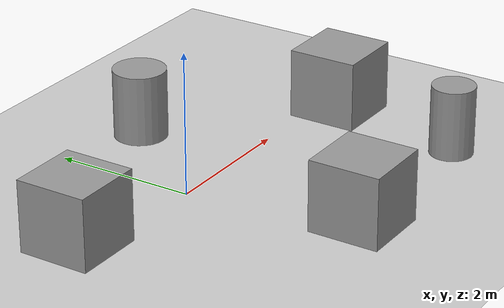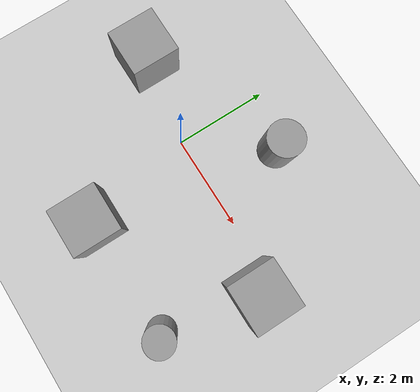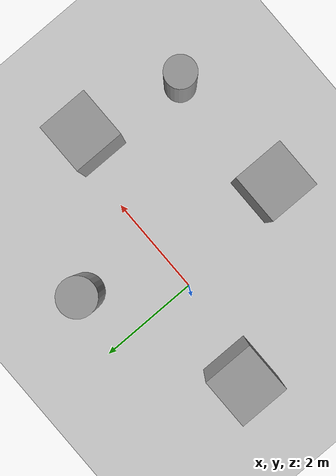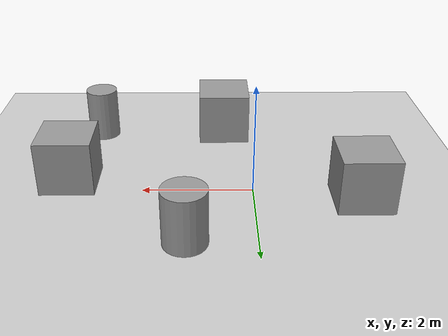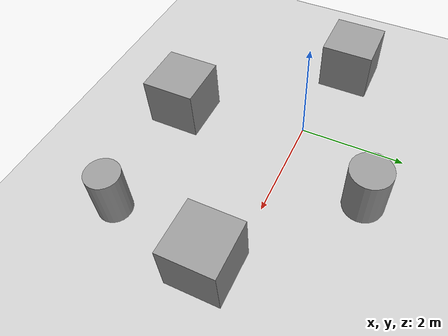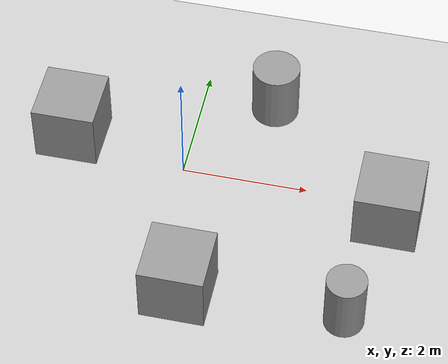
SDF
<sdf version="1.6">
 <world name="default">
  <light name="sun" type="directional">
   <pose>0 0 10 0 -0 0</pose>
   <diffuse>0.8 0.8 0.8 1</diffuse>
   <specular>0.2 0.2 0.2 1</specular>
   <attenuation>
    <range>1000</range>
    <constant>0.9</constant>
    <linear>0.01</linear>
    <quadratic>0.001</quadratic>
   </attenuation>
   <direction>-0.5 0.1 -0.9</direction>
  </light>
  <model name="ground_plane">
   <static>1</static>
   <link name="link">
    <collision name="collision">
     <geometry><plane><normal>0 0 1</normal><size>100 100</size></plane></geometry>
     <surface><friction><ode><mu>100</mu><mu2>50</mu2></ode></friction></surface>
    </collision>
    <visual name="visual">
     <cast_shadows>0</cast_shadows>
     <geometry><plane><normal>0 0 1</normal><size>100 100</size></plane></geometry>
     <material>
      <script><uri>file://media/materials/scripts/gazebo.material</uri><name>Gazebo/Grey</name></script>
     </material>
    </visual>
   </link>
  </model>
  <gravity>0 0 -9.8</gravity>
  <magnetic_field>6e-06 2.3e-05 -4.2e-05</magnetic_field>
  <atmosphere type="adiabatic"/>
  <physics name="default_physics" default="0" type="ode">
   <max_step_size>0.001</max_step_size>
   <real_time_factor>1</real_time_factor>
   <real_time_update_rate>1000</real_time_update_rate>
  </physics>
  <scene><ambient>0.4 0.4 0.4 1</ambient><background>0.7 0.7 0.7 1</background><shadows>1</shadows></scene>
  <spherical_coordinates>
   <surface_model>EARTH_WGS84</surface_model>
   <latitude_deg>0</latitude_deg>
   <longitude_deg>0</longitude_deg>
   <elevation>0</elevation>
   <heading_deg>0</heading_deg>
  </spherical_coordinates>
  <model name="unit_box" type="fixed">
   <pose>0.473834 -2.36808 0.5 0 -0 0</pose>
   <link name="link">
    <inertial>
     <mass>10000</mass>
     <inertia>
      <ixx>0.166667</ixx>
      <ixy>0</ixy>
      <ixz>0</ixz>
      <iyy>0.166667</iyy>
      <iyz>0</iyz>
      <izz>0.166667</izz>
     </inertia>
    </inertial>
    <collision name="collision"><geometry><box><size>1 1 1</size></box></geometry></collision>
    <visual name="visual">
     <geometry><box><size>1 1 1</size></box></geometry>
     <material>
      <script><name>Gazebo/Grey</name><uri>file://media/materials/scripts/gazebo.material</uri></script>
     </material>
    </visual>
   </link>
  </model>
  <model name="unit_box_0" type="fixed">
   <pose>3.34317 -0.345912 0.5 0 -0 0</pose>
   <link name="link">
    <inertial>
     <mass>10000</mass>
     <inertia>
      <ixx>0.166667</ixx>
      <ixy>0</ixy>
      <ixz>0</ixz>
      <iyy>0.166667</iyy>
      <iyz>0</iyz>
      <izz>0.166667</izz>
     </inertia>
    </inertial>
    <collision name="collision"><geometry><box><size>1 1 1</size></box></geometry></collision>
    <visual name="visual">
     <geometry><box><size>1 1 1</size></box></geometry>
     <material>
      <script><name>Gazebo/Grey</name><uri>file://media/materials/scripts/gazebo.material</uri></script>
     </material>
    </visual>
   </link>
  </model>
  <model name="unit_cylinder" type="fixed">
   <pose>2.99493 -2.32837 0.499993 -1e-06 -1e-06 0</pose>
   <link name="link">
    <inertial>
     <mass>10000</mass>
     <inertia><ixx>0.145833</ixx><ixy>0</ixy><ixz>0</ixz><iyy>0.145833</iyy><iyz>0</iyz><izz>0.125</izz></inertia>
    </inertial>
    <collision name="collision">
     <geometry><cylinder><radius>0.308468</radius><length>1</length></cylinder></geometry>
    </collision>
    <visual name="visual">
     <geometry><cylinder><radius>0.308468</radius><length>1</length></cylinder></geometry>
     <material>
      <script><name>Gazebo/Grey</name><uri>file://media/materials/scripts/gazebo.material</uri></script>
     </material>
    </visual>
   </link>
  </model>
  <model name="unit_cylinder_0" type="fixed">
   <pose>1.18174 1.57833 0.499995 -2e-06 -2e-06 0</pose>
   <link name="link">
    <inertial>
     <mass>10000</mass>
     <inertia><ixx>0.145833</ixx><ixy>0</ixy><ixz>0</ixz><iyy>0.145833</iyy><iyz>0</iyz><izz>0.125</izz></inertia>
    </inertial>
    <collision name="collision">
     <geometry><cylinder><radius>0.379868</radius><length>1</length></cylinder></geometry>
    </collision>
    <visual name="visual">
     <geometry><cylinder><radius>0.379868</radius><length>1</length></cylinder></geometry>
     <material>
      <script><name>Gazebo/Grey</name><uri>file://media/materials/scripts/gazebo.material</uri></script>
     </material>
    </visual>
   </link>
  </model>
  <model name="unit_box_1" type="fixed">
   <pose>-1.89373 0.331569 0.5 0 -0 0</pose>
   <link name="link">
    <inertial>
     <mass>10000</mass>
     <inertia>
      <ixx>0.166667</ixx>
      <ixy>0</ixy>
      <ixz>0</ixz>
      <iyy>0.166667</iyy>
      <iyz>0</iyz>
      <izz>0.166667</izz>
     </inertia>
    </inertial>
    <collision name="collision"><geometry><box><size>1 1 1</size></box></geometry></collision>
    <visual name="visual">
     <geometry><box><size>1 1 1</size></box></geometry>
     <material>
      <script><name>Gazebo/Grey</name><uri>file://media/materials/scripts/gazebo.material</uri></script>
     </material>
    </visual>
   </link>
  </model>
 </world>
</sdf>
